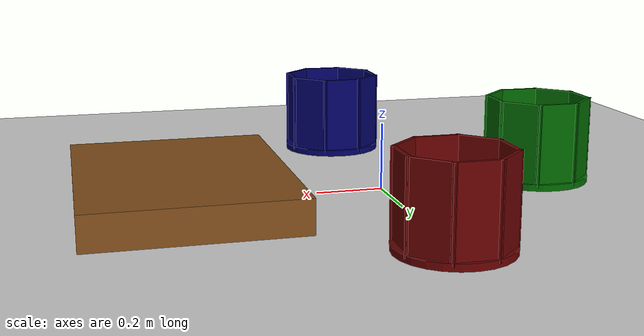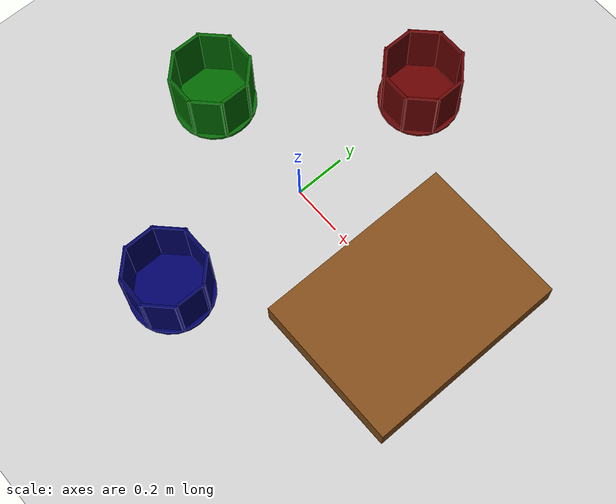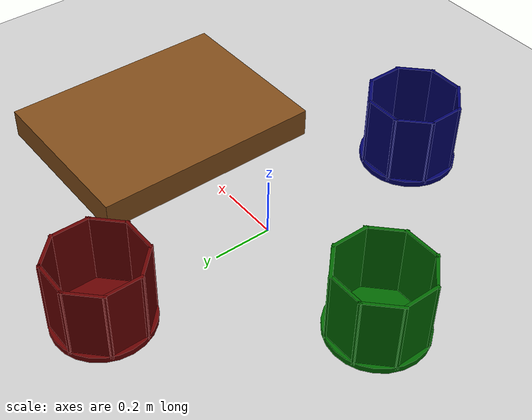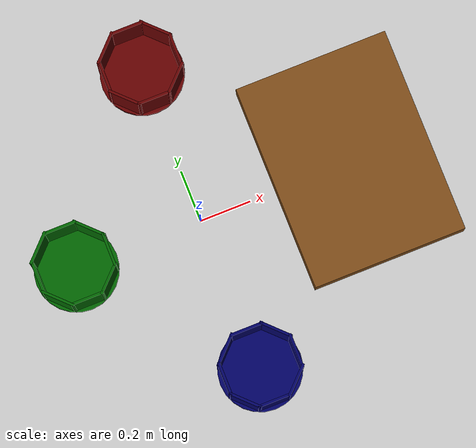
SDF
<?xml version="1.0" ?>
<sdf version="1.6">
  <world name="sorting_world">

    <physics name="1ms" type="ignored">
      <max_step_size>0.001</max_step_size>
      <real_time_factor>1.0</real_time_factor>
    </physics>
    <plugin filename="libignition-gazebo-physics-system.so" name="ignition::gazebo::systems::Physics"></plugin>
    <plugin filename="libignition-gazebo-user-commands-system.so" name="ignition::gazebo::systems::UserCommands"></plugin>
    <plugin filename="libignition-gazebo-scene-broadcaster-system.so" name="ignition::gazebo::systems::SceneBroadcaster"></plugin>
    <plugin
      filename="libignition-gazebo-sensors-system.so"
      name="ignition::gazebo::systems::Sensors">
      <render_engine>ogre</render_engine>

    </plugin>

    <light type="directional" name="sun">
      <cast_shadows>true</cast_shadows>
      <pose>0 0 10 0 0 0</pose>
      <diffuse>0.8 0.8 0.8 1</diffuse>
      <specular>0.2 0.2 0.2 1</specular>
      <direction>-0.5 0.1 -0.9</direction>
    </light>

    <model name="ground_plane">
      <static>true</static>
      <link name="link">
        <collision name="collision"><geometry><plane><normal>0 0 1</normal><size>100 100</size></plane></geometry></collision>
        <visual name="visual"><geometry><plane><normal>0 0 1</normal><size>100 100</size></plane></geometry>
          <material><ambient>0.8 0.8 0.8 1</ambient><diffuse>0.8 0.8 0.8 1</diffuse></material>
        </visual>
      </link>
    </model>

    <model name="table">
      <static>true</static>
      <pose>0.6 0 0.05 0 0 0</pose>
      <link name="link">
        <collision name="surface">
          <geometry>
            <box>
              <size>0.6 0.8 0.1</size>
            </box>
          </geometry>
        </collision>
        <visual name="visual">
          <geometry>
            <box>
              <size>0.6 0.8 0.1</size>
            </box>
          </geometry>
          <material>
            <ambient>0.5 0.3 0.1 1</ambient>
            <diffuse>0.5 0.3 0.1 1</diffuse>
          </material>
        </visual>
      </link>
    </model>

    <model name='bin_red'>
      <static>true</static>
      <pose>0 0.6 0 0 0 0</pose>
      <link name='bin_link'>
        <visual name='base_visual'>
          <pose>0 0 0.01 0 0 0</pose>
          <geometry><cylinder><radius>0.16</radius><length>0.02</length></cylinder></geometry>
          <material><ambient>0.4 0 0 1</ambient><diffuse>0.4 0 0 1</diffuse></material>
        </visual>
        <collision name='base_collision'>
          <pose>0 0 0.01 0 0 0</pose>
          <geometry><cylinder><radius>0.16</radius><length>0.02</length></cylinder></geometry>
        </collision>
        <visual name='w1_v'><pose>0.14 0 0.135 0 0 0</pose><geometry><box><size>0.01 0.13 0.25</size></box></geometry><material><ambient>0.4 0 0 1</ambient><diffuse>0.4 0 0 1</diffuse></material></visual>
        <collision name='w1_c'><pose>0.14 0 0.135 0 0 0</pose><geometry><box><size>0.01 0.13 0.25</size></box></geometry></collision>

        <visual name='w2_v'><pose>0.1 0.1 0.135 0 0 0.785</pose><geometry><box><size>0.01 0.13 0.25</size></box></geometry><material><ambient>0.4 0 0 1</ambient><diffuse>0.4 0 0 1</diffuse></material></visual>
        <collision name='w2_c'><pose>0.1 0.1 0.135 0 0 0.785</pose><geometry><box><size>0.01 0.13 0.25</size></box></geometry></collision>

        <visual name='w3_v'><pose>0 0.14 0.135 0 0 1.57</pose><geometry><box><size>0.01 0.13 0.25</size></box></geometry><material><ambient>0.4 0 0 1</ambient><diffuse>0.4 0 0 1</diffuse></material></visual>
        <collision name='w3_c'><pose>0 0.14 0.135 0 0 1.57</pose><geometry><box><size>0.01 0.13 0.25</size></box></geometry></collision>

        <visual name='w4_v'><pose>-0.1 0.1 0.135 0 0 2.356</pose><geometry><box><size>0.01 0.13 0.25</size></box></geometry><material><ambient>0.4 0 0 1</ambient><diffuse>0.4 0 0 1</diffuse></material></visual>
        <collision name='w4_c'><pose>-0.1 0.1 0.135 0 0 2.356</pose><geometry><box><size>0.01 0.13 0.25</size></box></geometry></collision>

        <visual name='w5_v'><pose>-0.14 0 0.135 0 0 3.14</pose><geometry><box><size>0.01 0.13 0.25</size></box></geometry><material><ambient>0.4 0 0 1</ambient><diffuse>0.4 0 0 1</diffuse></material></visual>
        <collision name='w5_c'><pose>-0.14 0 0.135 0 0 3.14</pose><geometry><box><size>0.01 0.13 0.25</size></box></geometry></collision>

        <visual name='w6_v'><pose>-0.1 -0.1 0.135 0 0 3.926</pose><geometry><box><size>0.01 0.13 0.25</size></box></geometry><material><ambient>0.4 0 0 1</ambient><diffuse>0.4 0 0 1</diffuse></material></visual>
        <collision name='w6_c'><pose>-0.1 -0.1 0.135 0 0 3.926</pose><geometry><box><size>0.01 0.13 0.25</size></box></geometry></collision>

        <visual name='w7_v'><pose>0 -0.14 0.135 0 0 4.71</pose><geometry><box><size>0.01 0.13 0.25</size></box></geometry><material><ambient>0.4 0 0 1</ambient><diffuse>0.4 0 0 1</diffuse></material></visual>
        <collision name='w7_c'><pose>0 -0.14 0.135 0 0 4.71</pose><geometry><box><size>0.01 0.13 0.25</size></box></geometry></collision>

        <visual name='w8_v'><pose>0.1 -0.1 0.135 0 0 5.49</pose><geometry><box><size>0.01 0.13 0.25</size></box></geometry><material><ambient>0.4 0 0 1</ambient><diffuse>0.4 0 0 1</diffuse></material></visual>
        <collision name='w8_c'><pose>0.1 -0.1 0.135 0 0 5.49</pose><geometry><box><size>0.01 0.13 0.25</size></box></geometry></collision>
      </link>
    </model>

    <model name='bin_blue'>
      <static>true</static>
      <pose>0 -0.6 0 0 0 0</pose>
      <link name='bin_link'>
        <visual name='base_visual'>
          <pose>0 0 0.01 0 0 0</pose>
          <geometry><cylinder><radius>0.16</radius><length>0.02</length></cylinder></geometry>
          <material><ambient>0 0 0.4 1</ambient><diffuse>0 0 0.4 1</diffuse></material>
        </visual>
        <collision name='base_collision'>
          <pose>0 0 0.01 0 0 0</pose>
          <geometry><cylinder><radius>0.16</radius><length>0.02</length></cylinder></geometry>
        </collision>

        <visual name='w1_v'><pose>0.14 0 0.135 0 0 0</pose><geometry><box><size>0.01 0.13 0.25</size></box></geometry><material><ambient>0 0 0.4 1</ambient><diffuse>0 0 0.4 1</diffuse></material></visual>
        <collision name='w1_c'><pose>0.14 0 0.135 0 0 0</pose><geometry><box><size>0.01 0.13 0.25</size></box></geometry></collision>

        <visual name='w2_v'><pose>0.1 0.1 0.135 0 0 0.785</pose><geometry><box><size>0.01 0.13 0.25</size></box></geometry><material><ambient>0 0 0.4 1</ambient><diffuse>0 0 0.4 1</diffuse></material></visual>
        <collision name='w2_c'><pose>0.1 0.1 0.135 0 0 0.785</pose><geometry><box><size>0.01 0.13 0.25</size></box></geometry></collision>

        <visual name='w3_v'><pose>0 0.14 0.135 0 0 1.57</pose><geometry><box><size>0.01 0.13 0.25</size></box></geometry><material><ambient>0 0 0.4 1</ambient><diffuse>0 0 0.4 1</diffuse></material></visual>
        <collision name='w3_c'><pose>0 0.14 0.135 0 0 1.57</pose><geometry><box><size>0.01 0.13 0.25</size></box></geometry></collision>

        <visual name='w4_v'><pose>-0.1 0.1 0.135 0 0 2.356</pose><geometry><box><size>0.01 0.13 0.25</size></box></geometry><material><ambient>0 0 0.4 1</ambient><diffuse>0 0 0.4 1</diffuse></material></visual>
        <collision name='w4_c'><pose>-0.1 0.1 0.135 0 0 2.356</pose><geometry><box><size>0.01 0.13 0.25</size></box></geometry></collision>

        <visual name='w5_v'><pose>-0.14 0 0.135 0 0 3.14</pose><geometry><box><size>0.01 0.13 0.25</size></box></geometry><material><ambient>0 0 0.4 1</ambient><diffuse>0 0 0.4 1</diffuse></material></visual>
        <collision name='w5_c'><pose>-0.14 0 0.135 0 0 3.14</pose><geometry><box><size>0.01 0.13 0.25</size></box></geometry></collision>

        <visual name='w6_v'><pose>-0.1 -0.1 0.135 0 0 3.926</pose><geometry><box><size>0.01 0.13 0.25</size></box></geometry><material><ambient>0 0 0.4 1</ambient><diffuse>0 0 0.4 1</diffuse></material></visual>
        <collision name='w6_c'><pose>-0.1 -0.1 0.135 0 0 3.926</pose><geometry><box><size>0.01 0.13 0.25</size></box></geometry></collision>

        <visual name='w7_v'><pose>0 -0.14 0.135 0 0 4.71</pose><geometry><box><size>0.01 0.13 0.25</size></box></geometry><material><ambient>0 0 0.4 1</ambient><diffuse>0 0 0.4 1</diffuse></material></visual>
        <collision name='w7_c'><pose>0 -0.14 0.135 0 0 4.71</pose><geometry><box><size>0.01 0.13 0.25</size></box></geometry></collision>

        <visual name='w8_v'><pose>0.1 -0.1 0.135 0 0 5.49</pose><geometry><box><size>0.01 0.13 0.25</size></box></geometry><material><ambient>0 0 0.4 1</ambient><diffuse>0 0 0.4 1</diffuse></material></visual>
        <collision name='w8_c'><pose>0.1 -0.1 0.135 0 0 5.49</pose><geometry><box><size>0.01 0.13 0.25</size></box></geometry></collision>
      </link>
    </model>

    <model name='bin_green'>
      <static>true</static>
      <pose>-0.5 0 0 0 0 0</pose>
      <link name='bin_link'>
        <visual name='base_visual'>
          <pose>0 0 0.01 0 0 0</pose>
          <geometry><cylinder><radius>0.16</radius><length>0.02</length></cylinder></geometry>
          <material><ambient>0 0.4 0 1</ambient><diffuse>0 0.4 0 1</diffuse></material>
        </visual>
        <collision name='base_collision'>
          <pose>0 0 0.01 0 0 0</pose>
          <geometry><cylinder><radius>0.16</radius><length>0.02</length></cylinder></geometry>
        </collision>

        <visual name='w1_v'><pose>0.14 0 0.135 0 0 0</pose><geometry><box><size>0.01 0.13 0.25</size></box></geometry><material><ambient>0 0.4 0 1</ambient><diffuse>0 0.4 0 1</diffuse></material></visual>
        <collision name='w1_c'><pose>0.14 0 0.135 0 0 0</pose><geometry><box><size>0.01 0.13 0.25</size></box></geometry></collision>

        <visual name='w2_v'><pose>0.1 0.1 0.135 0 0 0.785</pose><geometry><box><size>0.01 0.13 0.25</size></box></geometry><material><ambient>0 0.4 0 1</ambient><diffuse>0 0.4 0 1</diffuse></material></visual>
        <collision name='w2_c'><pose>0.1 0.1 0.135 0 0 0.785</pose><geometry><box><size>0.01 0.13 0.25</size></box></geometry></collision>

        <visual name='w3_v'><pose>0 0.14 0.135 0 0 1.57</pose><geometry><box><size>0.01 0.13 0.25</size></box></geometry><material><ambient>0 0.4 0 1</ambient><diffuse>0 0.4 0 1</diffuse></material></visual>
        <collision name='w3_c'><pose>0 0.14 0.135 0 0 1.57</pose><geometry><box><size>0.01 0.13 0.25</size></box></geometry></collision>

        <visual name='w4_v'><pose>-0.1 0.1 0.135 0 0 2.356</pose><geometry><box><size>0.01 0.13 0.25</size></box></geometry><material><ambient>0 0.4 0 1</ambient><diffuse>0 0.4 0 1</diffuse></material></visual>
        <collision name='w4_c'><pose>-0.1 0.1 0.135 0 0 2.356</pose><geometry><box><size>0.01 0.13 0.25</size></box></geometry></collision>

        <visual name='w5_v'><pose>-0.14 0 0.135 0 0 3.14</pose><geometry><box><size>0.01 0.13 0.25</size></box></geometry><material><ambient>0 0.4 0 1</ambient><diffuse>0 0.4 0 1</diffuse></material></visual>
        <collision name='w5_c'><pose>-0.14 0 0.135 0 0 3.14</pose><geometry><box><size>0.01 0.13 0.25</size></box></geometry></collision>

        <visual name='w6_v'><pose>-0.1 -0.1 0.135 0 0 3.926</pose><geometry><box><size>0.01 0.13 0.25</size></box></geometry><material><ambient>0 0.4 0 1</ambient><diffuse>0 0.4 0 1</diffuse></material></visual>
        <collision name='w6_c'><pose>-0.1 -0.1 0.135 0 0 3.926</pose><geometry><box><size>0.01 0.13 0.25</size></box></geometry></collision>

        <visual name='w7_v'><pose>0 -0.14 0.135 0 0 4.71</pose><geometry><box><size>0.01 0.13 0.25</size></box></geometry><material><ambient>0 0.4 0 1</ambient><diffuse>0 0.4 0 1</diffuse></material></visual>
        <collision name='w7_c'><pose>0 -0.14 0.135 0 0 4.71</pose><geometry><box><size>0.01 0.13 0.25</size></box></geometry></collision>

        <visual name='w8_v'><pose>0.1 -0.1 0.135 0 0 5.49</pose><geometry><box><size>0.01 0.13 0.25</size></box></geometry><material><ambient>0 0.4 0 1</ambient><diffuse>0 0.4 0 1</diffuse></material></visual>
        <collision name='w8_c'><pose>0.1 -0.1 0.135 0 0 5.49</pose><geometry><box><size>0.01 0.13 0.25</size></box></geometry></collision>
      </link>
    </model>

  </world>
</sdf>
